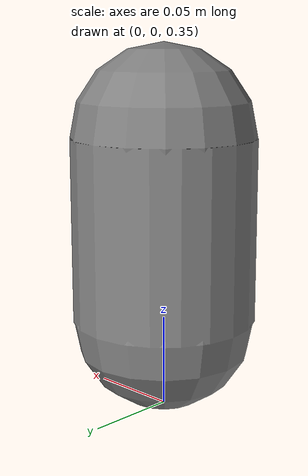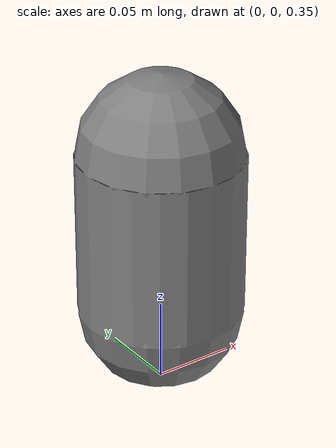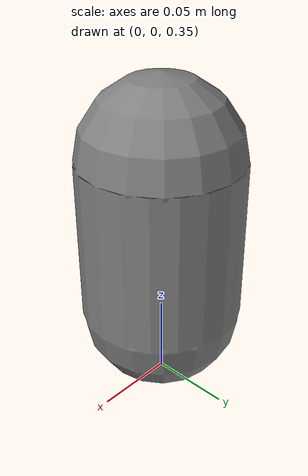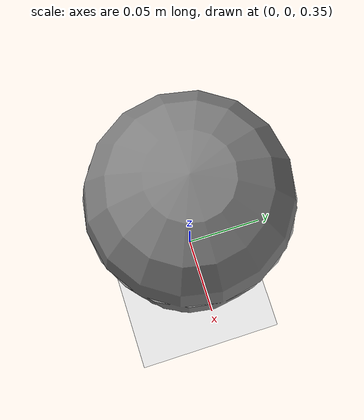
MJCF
<?xml version="1.0" ?>
<mujoco>
    <worldbody>
        <body name="pendulum" pos="0 0 0.5">
            <joint name="pivot" type="hinge" axis="0 0 1" limited="true" range="-90 90"/>
            <geom name="pendulum" type="capsule" fromto="0 0 0 0 0 -0.1" size="0.05"/>
        </body>
        <geom type="plane" size="0.1 0.1 0.1" rgba="0.9 0.9 0.9 1"/>
    </worldbody>
    <actuator>
        <motor gear="100.0" joint="pivot"/>
    </actuator>
</mujoco>
